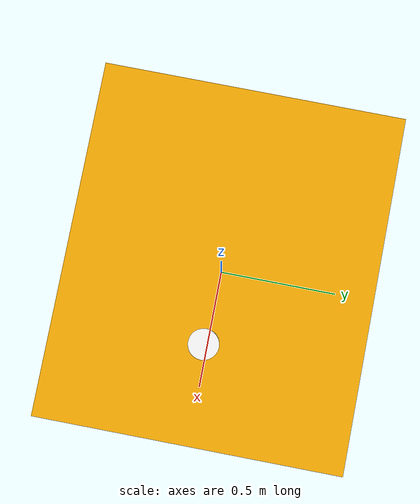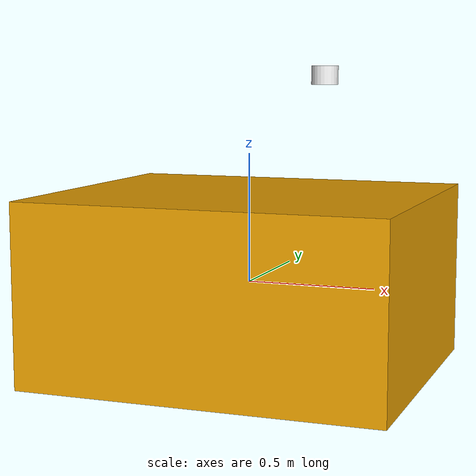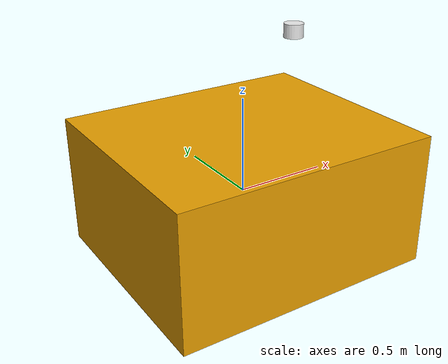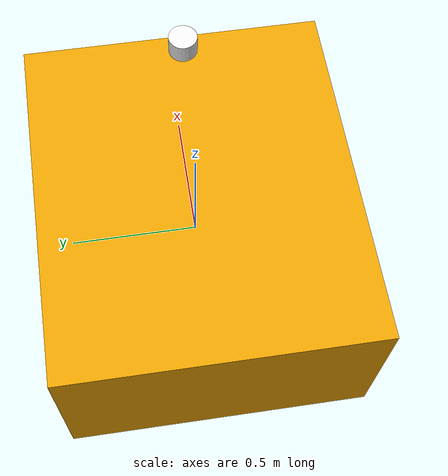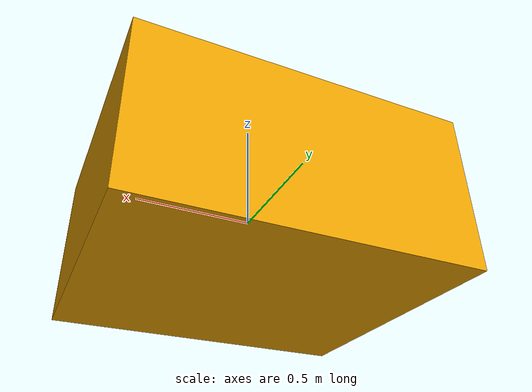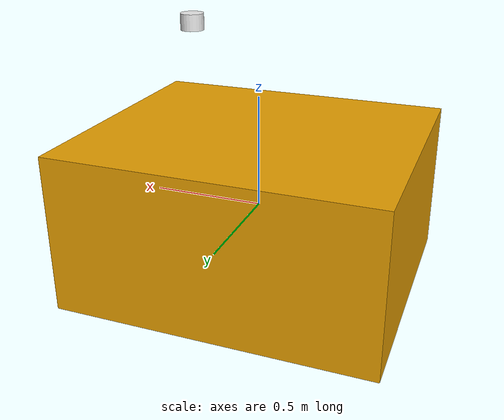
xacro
<?xml version="1.0"?>
<robot name="chuan" xmlns:xacro="http://ros.org/wiki/xacro">

    <link name="base_link">
        <visual>
        <geometry>
            <box size="1.4 1.2 0.7"/>
        </geometry>
        <material name="fense"/>
        </visual>
    </link>

    <link name="velodyne">
        <visual>
        <geometry>
            <cylinder length="0.07" radius="0.05"/>
        </geometry>
        <material name="white"/>
        </visual>
    </link>

    <joint name="velodyne_to_base_link" type="fixed">
        <parent link="base_link"/>
        <child link="velodyne"/>
        <origin rpy="0 0 0" xyz="0.3 0.0 0.8"/>
    </joint>

</robot>
